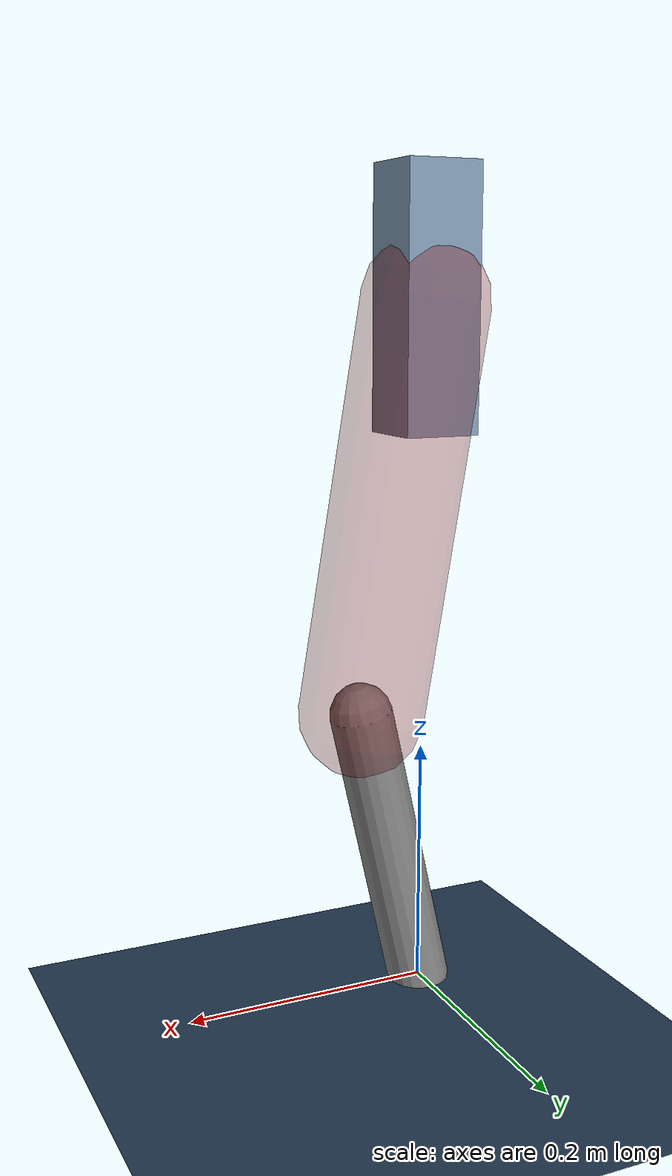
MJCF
<mujoco model="Hopper2D">
	<compiler inertiafromgeom="true" angle="radian" />
	<option timestep="0.001" integrator="implicit" cone="elliptic" solver="Newton" tolerance="1e-10" />

	<default>
		<geom contype="1" conaffinity="1" condim="3" friction="2 0.005 0.0001" solref="0.005 1" />
		<joint limited="true" damping="0.1" />
	</default>

	<asset>
		<texture name="skybox" type="skybox" builtin="gradient" rgb1=".4 .6 .8" rgb2="0 0 0" width="800" height="800" />
		<texture name="grid" type="2d" builtin="checker" rgb1=".1 .2 .3" rgb2=".2 .3 .4" width="300" height="300" mark="edge" markrgb=".2 .3 .4" />
		<material name="ground" texture="grid" texrepeat="1 1" texuniform="true" reflectance="0.1" />
		<material name="leg" rgba="0.5 0.6 0.7 1" />
	</asset>

	<worldbody>

		<geom name="floor" type="plane" size="5 5 0.25" material="ground" />

		<light directional="false" diffuse="0.8 0.8 0.8" specular="0.3 0.3 0.3" pos="0 0 2" dir="0 0 -1" />
		<light mode="targetbodycom" target="base" directional="false" diffuse="0.8 0.8 0.8" specular="0.3 0.3 0.3" pos="0 0 2" dir="0 0 -1" />

		<camera name="fixed" pos="0 -2 1" xyaxes="1 0 0 0 0 1" />
		<camera name="tracking" mode="trackcom" pos="0 -3 1" />

		<body name="root" pos="0 0 0.5517112185883295">
			<joint name="slide_x" type="slide" axis="1 0 0" range="-100 100" />
			<joint name="slide_z" type="slide" axis="0 0 1" range="0 10" />

			<body name="base" pos="0 0 0">
				<geom name="torso" type="box" size="0.03 0.03 0.1" mass="2.724" material="leg" />

				<body name="link1" pos="0 0 0" euler="0 1.4050141592278416 0">
					<joint type="hinge" axis="0 -1 0" pos="0 0 0" name="hinge1" limited="true" range="-3.14 3.14" stiffness="0" damping="0.1" />
					<geom name="thigh" type="capsule" fromto="0 0 0 0.3226291326233634 0 0" size="0.05" rgba="0.5 0 0 0.3" mass="1.0504615713454175" />

					<body name="link2" pos="0.3226291326233634 0 0" euler="0 0.3899593600314946 0">
						<joint type="hinge" axis="0 -1 0" pos="0 0 0" name="hinge2" limited="true" range="-3.14 3.14" stiffness="0" damping="0.1" />
						<geom name="shank" type="capsule" fromto="0 0 0 0.23949834985080368 0 0" size="0.025" mass="0.43384851486572334" />

					</body>
				</body>
			</body>
		</body>
	</worldbody>

	<actuator>
		<motor name="torque1" joint="hinge1" ctrlrange="-137.95748812593396 137.95748812593396" ctrllimited="true" gear="1" />
		<motor name="torque2" joint="hinge2" ctrlrange="-28.50223791354219 28.50223791354219" ctrllimited="true" gear="1" />
	</actuator>
</mujoco>
